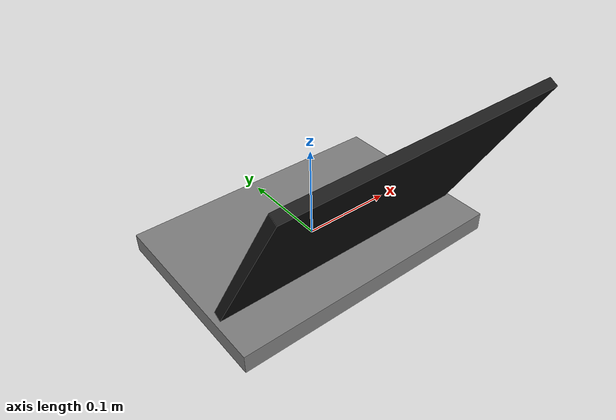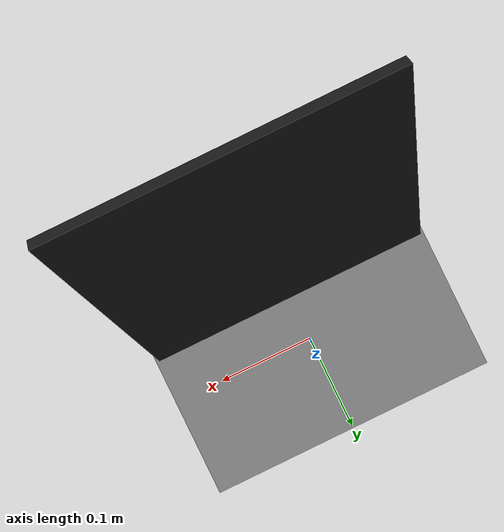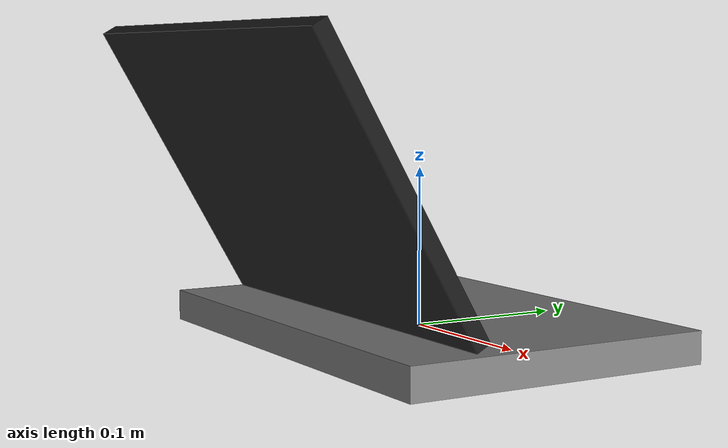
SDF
<?xml version="1.0" ?>
<sdf version="1.6">
  <model name="laptop">
    <static>true</static>
    <link name="link">
      <collision name="collision">
        <geometry>
          <box>
            <size>0.3 0.2 0.02</size>
          </box>
        </geometry>
      </collision>
      <visual name="visual_base">
        <geometry>
          <box>
            <size>0.3 0.2 0.02</size>
          </box>
        </geometry>
        <material>
          <ambient>0.5 0.5 0.5 1</ambient>
          <diffuse>0.5 0.5 0.5 1</diffuse>
        </material>
      </visual>
      <visual name="visual_screen">
        <pose>0 -0.1 0.1 0.52 0 0</pose>
        <geometry>
          <box>
            <size>0.29 0.01 0.2</size>
          </box>
        </geometry>
        <material>
          <ambient>0.1 0.1 0.1 1</ambient>
          <diffuse>0.1 0.1 0.1 1</diffuse>
        </material>
      </visual>
    </link>
  </model>
</sdf>
